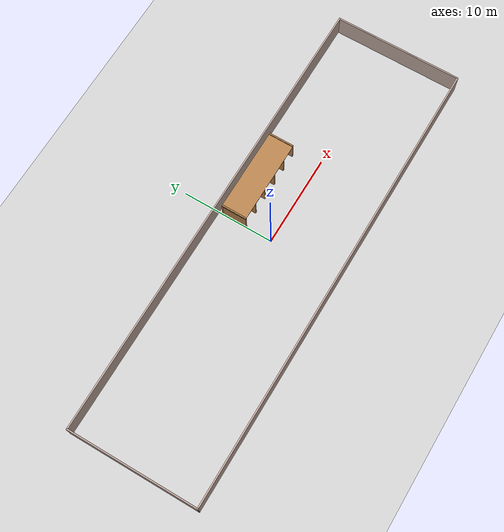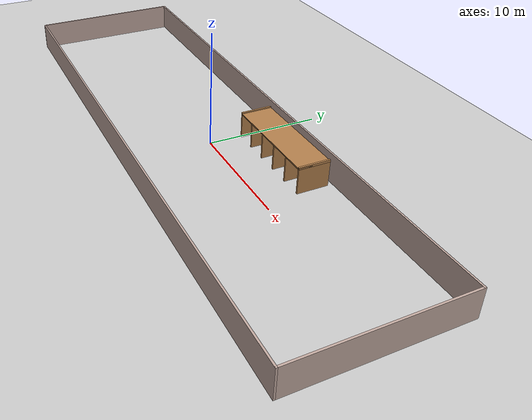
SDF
<sdf version="1.7">
 <world name="default">
  <light name="sun" type="directional">
   <pose>0 0 10 0 -0 0</pose>
   <diffuse>0.8 0.8 0.8 1</diffuse>
   <specular>0.2 0.2 0.2 1</specular>
   <attenuation>
    <range>1000</range>
    <constant>0.9</constant>
    <linear>0.01</linear>
    <quadratic>0.001</quadratic>
   </attenuation>
   <direction>-0.5 0.1 -0.9</direction>
   <spot><inner_angle>0</inner_angle><outer_angle>0</outer_angle><falloff>0</falloff></spot>
  </light>
  <model name="ground_plane">
   <static>1</static>
   <link name="link">
    <collision name="collision">
     <geometry><plane><normal>0 0 1</normal><size>100 100</size></plane></geometry>
     <surface>
      <contact><collide_bitmask>65535</collide_bitmask></contact>
      <friction><ode><mu>100</mu><mu2>50</mu2></ode></friction>
     </surface>
    </collision>
    <visual name="visual">
     <cast_shadows>0</cast_shadows>
     <geometry><plane><normal>0 0 1</normal><size>100 100</size></plane></geometry>
     <material>
      <script><uri>file://media/materials/scripts/gazebo.material</uri><name>Gazebo/Grey</name></script>
     </material>
    </visual>
   </link>
  </model>
  <gravity>0 0 -9.8</gravity>
  <magnetic_field>6e-06 2.3e-05 -4.2e-05</magnetic_field>
  <atmosphere type="adiabatic"/>
  <physics type="ode">
   <max_step_size>0.001</max_step_size>
   <real_time_factor>1</real_time_factor>
   <real_time_update_rate>1000</real_time_update_rate>
  </physics>
  <scene><ambient>0.4 0.4 0.4 1</ambient><background>0.7 0.7 0.7 1</background><shadows>1</shadows></scene>
  <spherical_coordinates>
   <surface_model>EARTH_WGS84</surface_model>
   <latitude_deg>0</latitude_deg>
   <longitude_deg>0</longitude_deg>
   <elevation>0</elevation>
   <heading_deg>0</heading_deg>
  </spherical_coordinates>
  <model name="platz_01">
   <pose>-0.695861 -0.832343 0 0 -0 0</pose>
   <link name="Wall_31">
    <collision name="Wall_31_Collision">
     <geometry><box><size>50.1064 0.15 2.5</size></box></geometry>
     <pose>0 0 1.25 0 -0 0</pose>
    </collision>
    <visual name="Wall_31_Visual">
     <pose>0 0 1.25 0 -0 0</pose>
     <geometry><box><size>50.1064 0.15 2.5</size></box></geometry>
     <material>
      <script><uri>file://media/materials/scripts/gazebo.material</uri><name>Gazebo/Grey</name></script>
      <ambient>0.760784 0.662745 0.627451 1</ambient>
     </material>
     <meta><layer>0</layer></meta>
    </visual>
    <pose>0.000288 6.92518 0 0 -0 0</pose>
   </link>
   <link name="Wall_34">
    <collision name="Wall_34_Collision">
     <geometry><box><size>14 0.15 2.5</size></box></geometry>
     <pose>0 0 1.25 0 -0 0</pose>
    </collision>
    <visual name="Wall_34_Visual">
     <pose>0 0 1.25 0 -0 0</pose>
     <geometry><box><size>14 0.15 2.5</size></box></geometry>
     <material>
      <script><uri>file://media/materials/scripts/gazebo.material</uri><name>Gazebo/Grey</name></script>
      <ambient>0.760784 0.662745 0.627451 1</ambient>
     </material>
     <meta><layer>0</layer></meta>
    </visual>
    <pose>24.9786 -0 0 0 -0 -1.57082</pose>
   </link>
   <link name="Wall_35">
    <collision name="Wall_35_Collision">
     <geometry><box><size>50 0.15 2.5</size></box></geometry>
     <pose>0 0 1.25 0 -0 0</pose>
    </collision>
    <visual name="Wall_35_Visual">
     <pose>0 0 1.25 0 -0 0</pose>
     <geometry><box><size>50 0.15 2.5</size></box></geometry>
     <material>
      <script><uri>file://media/materials/scripts/gazebo.material</uri><name>Gazebo/Grey</name></script>
      <ambient>0.760784 0.662745 0.627451 1</ambient>
     </material>
     <meta><layer>0</layer></meta>
    </visual>
    <pose>0.053442 -6.92518 0 0 -0 3.14159</pose>
   </link>
   <link name="Wall_36">
    <collision name="Wall_36_Collision">
     <geometry><box><size>14.0004 0.15 2.5</size></box></geometry>
     <pose>0 0 1.25 0 -0 0</pose>
    </collision>
    <visual name="Wall_36_Visual">
     <pose>0 0 1.25 0 -0 0</pose>
     <geometry><box><size>14.0004 0.15 2.5</size></box></geometry>
     <material>
      <script><uri>file://media/materials/scripts/gazebo.material</uri><name>Gazebo/Grey</name></script>
      <ambient>0.760784 0.662745 0.627451 1</ambient>
     </material>
     <meta><layer>0</layer></meta>
    </visual>
    <pose>-24.9249 -0 0 0 -0 1.5785</pose>
   </link>
   <static>1</static>
  </model>
  <model name="parkplatz_01">
   <pose>4.58652 4.22155 0 0 -0 0</pose>
   <link name="Floor_0">
    <collision name="Floor_0_Collision">
     <geometry><box><size>9.2 2.75 0.1</size></box></geometry>
     <pose>0 0 0.05 0 -0 0</pose>
    </collision>
    <visual name="Floor_0_Visual">
     <pose>0 0 0.05 0 -0 0</pose>
     <geometry><box><size>9.2 2.75 0.1</size></box></geometry>
     <material>
      <script><uri>file://media/materials/scripts/gazebo.material</uri><name>Gazebo/Wood</name></script>
      <ambient>1 1 1 1</ambient>
     </material>
     <meta><layer>1</layer></meta>
    </visual>
    <pose>0 0.01 2.163 0 -0 0</pose>
   </link>
   <link name="Wall_10">
    <collision name="Wall_10_Collision">
     <geometry><box><size>2.75 0.15 2.163</size></box></geometry>
     <pose>0 0 1.0815 0 -0 0</pose>
    </collision>
    <visual name="Wall_10_Visual">
     <pose>0 0 1.0815 0 -0 0</pose>
     <geometry><box><size>2.75 0.15 2.163</size></box></geometry>
     <material>
      <script><uri>file://media/materials/scripts/gazebo.material</uri><name>Gazebo/Wood</name></script>
      <ambient>1 1 1 1</ambient>
     </material>
     <meta><layer>0</layer></meta>
    </visual>
    <pose>0.885 -0.01 0 0 -0 -1.5708</pose>
   </link>
   <link name="Wall_12">
    <collision name="Wall_12_Collision">
     <geometry><box><size>2.75 0.15 2.163</size></box></geometry>
     <pose>0 0 1.0815 0 -0 0</pose>
    </collision>
    <visual name="Wall_12_Visual">
     <pose>0 0 1.0815 0 -0 0</pose>
     <geometry><box><size>2.75 0.15 2.163</size></box></geometry>
     <material>
      <script><uri>file://media/materials/scripts/gazebo.material</uri><name>Gazebo/Wood</name></script>
      <ambient>1 1 1 1</ambient>
     </material>
     <meta><layer>0</layer></meta>
    </visual>
    <pose>2.695 -0.01 0 0 -0 -1.5708</pose>
   </link>
   <link name="Wall_17">
    <collision name="Wall_17_Collision">
     <geometry><box><size>9.2 0.15 2.163</size></box></geometry>
     <pose>0 0 1.0815 0 -0 0</pose>
    </collision>
    <visual name="Wall_17_Visual">
     <pose>0 0 1.0815 0 -0 0</pose>
     <geometry><box><size>9.2 0.15 2.163</size></box></geometry>
     <material>
      <script><uri>file://media/materials/scripts/gazebo.material</uri><name>Gazebo/Wood</name></script>
      <ambient>1 1 1 1</ambient>
     </material>
     <meta><layer>0</layer></meta>
    </visual>
    <pose>0 1.31 0 0 -0 0</pose>
   </link>
   <link name="Wall_22">
    <collision name="Wall_22_Collision">
     <geometry><box><size>2.75 0.15 2.163</size></box></geometry>
     <pose>0 0 1.0815 0 -0 0</pose>
    </collision>
    <visual name="Wall_22_Visual">
     <pose>0 0 1.0815 0 -0 0</pose>
     <geometry><box><size>2.75 0.15 2.163</size></box></geometry>
     <material>
      <script><uri>file://media/materials/scripts/gazebo.material</uri><name>Gazebo/Wood</name></script>
      <ambient>1 1 1 1</ambient>
     </material>
     <meta><layer>0</layer></meta>
    </visual>
    <pose>4.525 0.01 0 0 -0 -1.5708</pose>
   </link>
   <link name="Wall_24">
    <collision name="Wall_24_Collision">
     <geometry><box><size>2.75 0.15 0.2</size></box></geometry>
     <pose>0 0 0.1 0 -0 0</pose>
    </collision>
    <visual name="Wall_24_Visual">
     <pose>0 0 0.1 0 -0 0</pose>
     <geometry><box><size>2.75 0.15 0.2</size></box></geometry>
     <material>
      <script><uri>file://media/materials/scripts/gazebo.material</uri><name>Gazebo/Wood</name></script>
      <ambient>1 1 1 1</ambient>
     </material>
     <meta><layer>1</layer></meta>
    </visual>
    <pose>-4.525 0.01 2.163 0 -0 -1.5708</pose>
   </link>
   <link name="Wall_30">
    <collision name="Wall_30_Collision">
     <geometry><box><size>2.75 0.15 0.2</size></box></geometry>
     <pose>0 0 0.1 0 -0 0</pose>
    </collision>
    <visual name="Wall_30_Visual">
     <pose>0 0 0.1 0 -0 0</pose>
     <geometry><box><size>2.75 0.15 0.2</size></box></geometry>
     <material>
      <script><uri>file://media/materials/scripts/gazebo.material</uri><name>Gazebo/Wood</name></script>
      <ambient>1 1 1 1</ambient>
     </material>
     <meta><layer>1</layer></meta>
    </visual>
    <pose>4.525 0.01 2.163 0 -0 -1.5708</pose>
   </link>
   <link name="Wall_4">
    <collision name="Wall_4_Collision">
     <geometry><box><size>2.75 0.15 2.163</size></box></geometry>
     <pose>0 0 1.0815 0 -0 0</pose>
    </collision>
    <visual name="Wall_4_Visual">
     <pose>0 0 1.0815 0 -0 0</pose>
     <geometry><box><size>2.75 0.15 2.163</size></box></geometry>
     <material>
      <script><uri>file://media/materials/scripts/gazebo.material</uri><name>Gazebo/Wood</name></script>
      <ambient>1 1 1 1</ambient>
     </material>
     <meta><layer>0</layer></meta>
    </visual>
    <pose>-4.525 0.01 0 0 -0 -1.5708</pose>
   </link>
   <link name="Wall_6">
    <collision name="Wall_6_Collision">
     <geometry><box><size>2.75 0.15 2.163</size></box></geometry>
     <pose>0 0 1.0815 0 -0 0</pose>
    </collision>
    <visual name="Wall_6_Visual">
     <pose>0 0 1.0815 0 -0 0</pose>
     <geometry><box><size>2.75 0.15 2.163</size></box></geometry>
     <material>
      <script><uri>file://media/materials/scripts/gazebo.material</uri><name>Gazebo/Wood</name></script>
      <ambient>1 1 1 1</ambient>
     </material>
     <meta><layer>0</layer></meta>
    </visual>
    <pose>-2.725 -0.01 0 0 -0 -1.5708</pose>
   </link>
   <link name="Wall_8">
    <collision name="Wall_8_Collision">
     <geometry><box><size>2.75 0.15 2.163</size></box></geometry>
     <pose>0 0 1.0815 0 -0 0</pose>
    </collision>
    <visual name="Wall_8_Visual">
     <pose>0 0 1.0815 0 -0 0</pose>
     <geometry><box><size>2.75 0.15 2.163</size></box></geometry>
     <material>
      <script><uri>file://media/materials/scripts/gazebo.material</uri><name>Gazebo/Wood</name></script>
      <ambient>1 1 1 1</ambient>
     </material>
     <meta><layer>0</layer></meta>
    </visual>
    <pose>-0.925 -0.01 0 0 -0 -1.5708</pose>
   </link>
   <static>1</static>
  </model>
 </world>
</sdf>
